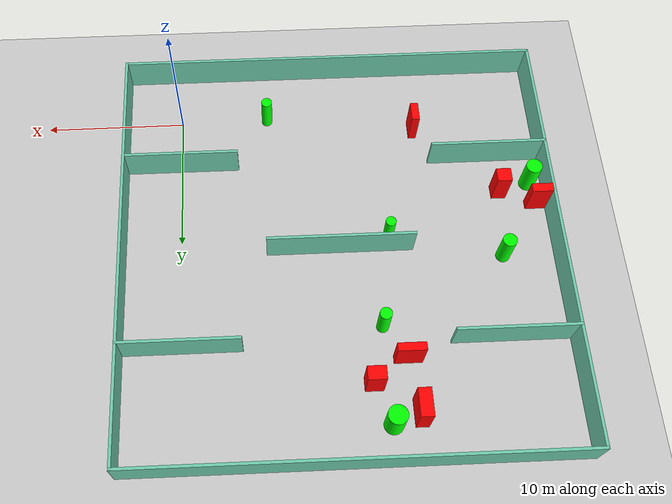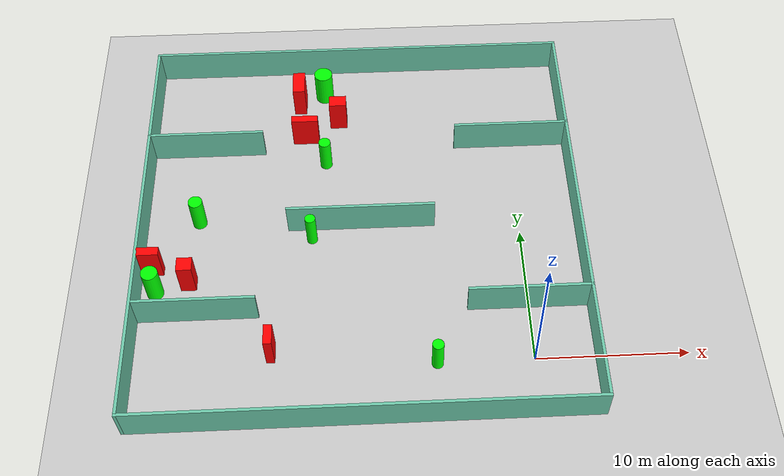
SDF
<sdf version="1.7">
 <world name="default">
  <light name="sun" type="directional">
   <pose>0 0 10 0 -0 0</pose>
   <diffuse>0.8 0.8 0.8 1</diffuse>
   <specular>0.2 0.2 0.2 1</specular>
   <attenuation>
    <range>1000</range>
    <constant>0.9</constant>
    <linear>0.01</linear>
    <quadratic>0.001</quadratic>
   </attenuation>
   <direction>-0.5 0.1 -0.9</direction>
   <spot><inner_angle>0</inner_angle><outer_angle>0</outer_angle><falloff>0</falloff></spot>
  </light>
  <model name="ground_plane">
   <static>1</static>
   <link name="link">
    <collision name="collision">
     <geometry><plane><normal>0 0 1</normal><size>100 100</size></plane></geometry>
     <surface>
      <contact><collide_bitmask>65535</collide_bitmask></contact>
      <friction><ode><mu>100</mu><mu2>50</mu2></ode></friction>
     </surface>
    </collision>
    <visual name="visual">
     <cast_shadows>0</cast_shadows>
     <geometry><plane><normal>0 0 1</normal><size>100 100</size></plane></geometry>
     <material>
      <script><uri>file://media/materials/scripts/gazebo.material</uri><name>Gazebo/Grey</name></script>
     </material>
    </visual>
   </link>
  </model>
  <gravity>0 0 -9.8</gravity>
  <magnetic_field>6e-06 2.3e-05 -4.2e-05</magnetic_field>
  <atmosphere type="adiabatic"/>
  <physics type="ode">
   <max_step_size>0.001</max_step_size>
   <real_time_factor>1</real_time_factor>
   <real_time_update_rate>1000</real_time_update_rate>
  </physics>
  <scene><ambient>0.4 0.4 0.4 1</ambient><background>0.7 0.7 0.7 1</background><shadows>1</shadows></scene>
  <spherical_coordinates>
   <surface_model>EARTH_WGS84</surface_model>
   <latitude_deg>0</latitude_deg>
   <longitude_deg>0</longitude_deg>
   <elevation>0</elevation>
   <heading_deg>0</heading_deg>
  </spherical_coordinates>
  <model name="my_base_walls">
   <link name="Wall_10">
    <collision name="Wall_10_Collision">
     <geometry><box><size>8.2 0.2 2.5</size></box></geometry>
     <pose>0 0 1.25 0 -0 0</pose>
    </collision>
    <visual name="Wall_10_Visual">
     <pose>0 0 1.25 0 -0 0</pose>
     <geometry><box><size>8.2 0.2 2.5</size></box></geometry>
     <material>
      <script><uri>file://media/materials/scripts/gazebo.material</uri><name>Gazebo/Grey</name></script>
      <ambient>0.435294 0.796078 0.67451 1</ambient>
     </material>
     <meta><layer>0</layer></meta>
    </visual>
    <pose>-11 -7 0 0 -0 0</pose>
   </link>
   <link name="Wall_12">
    <collision name="Wall_12_Collision">
     <geometry><box><size>8.2 0.2 2.5</size></box></geometry>
     <pose>0 0 1.25 0 -0 0</pose>
    </collision>
    <visual name="Wall_12_Visual">
     <pose>0 0 1.25 0 -0 0</pose>
     <geometry><box><size>8.2 0.2 2.5</size></box></geometry>
     <material>
      <script><uri>file://media/materials/scripts/gazebo.material</uri><name>Gazebo/Grey</name></script>
      <ambient>0.435294 0.796078 0.67451 1</ambient>
     </material>
     <meta><layer>0</layer></meta>
    </visual>
    <pose>-11 7 0 0 -0 0</pose>
   </link>
   <link name="Wall_14">
    <collision name="Wall_14_Collision">
     <geometry><box><size>8.2 0.2 2.5</size></box></geometry>
     <pose>0 0 1.25 0 -0 0</pose>
    </collision>
    <visual name="Wall_14_Visual">
     <pose>0 0 1.25 0 -0 0</pose>
     <geometry><box><size>8.2 0.2 2.5</size></box></geometry>
     <material>
      <script><uri>file://media/materials/scripts/gazebo.material</uri><name>Gazebo/Grey</name></script>
      <ambient>0.435294 0.796078 0.67451 1</ambient>
     </material>
     <meta><layer>0</layer></meta>
    </visual>
    <pose>11 7 0 0 -0 3.14159</pose>
   </link>
   <link name="Wall_16">
    <collision name="Wall_16_Collision">
     <geometry><box><size>10.2 0.2 2.5</size></box></geometry>
     <pose>0 0 1.25 0 -0 0</pose>
    </collision>
    <visual name="Wall_16_Visual">
     <pose>0 0 1.25 0 -0 0</pose>
     <geometry><box><size>10.2 0.2 2.5</size></box></geometry>
     <material>
      <script><uri>file://media/materials/scripts/gazebo.material</uri><name>Gazebo/Grey</name></script>
      <ambient>0.435294 0.796078 0.67451 1</ambient>
     </material>
     <meta><layer>0</layer></meta>
    </visual>
    <pose>0 0 0 0 -0 3.14159</pose>
   </link>
   <link name="Wall_2">
    <collision name="Wall_2_Collision">
     <geometry><box><size>30.2 0.2 2.5</size></box></geometry>
     <pose>0 0 1.25 0 -0 0</pose>
    </collision>
    <visual name="Wall_2_Visual">
     <pose>0 0 1.25 0 -0 0</pose>
     <geometry><box><size>30.2 0.2 2.5</size></box></geometry>
     <material>
      <script><uri>file://media/materials/scripts/gazebo.material</uri><name>Gazebo/Grey</name></script>
      <ambient>0.435294 0.796078 0.67451 1</ambient>
     </material>
     <meta><layer>0</layer></meta>
    </visual>
    <pose>0 -15 0 0 -0 3.14159</pose>
   </link>
   <link name="Wall_3">
    <collision name="Wall_3_Collision">
     <geometry><box><size>30.2 0.2 2.5</size></box></geometry>
     <pose>0 0 1.25 0 -0 0</pose>
    </collision>
    <visual name="Wall_3_Visual">
     <pose>0 0 1.25 0 -0 0</pose>
     <geometry><box><size>30.2 0.2 2.5</size></box></geometry>
     <material>
      <script><uri>file://media/materials/scripts/gazebo.material</uri><name>Gazebo/Grey</name></script>
      <ambient>0.435294 0.796078 0.67451 1</ambient>
     </material>
     <meta><layer>0</layer></meta>
    </visual>
    <pose>-15 0 0 0 -0 1.5708</pose>
   </link>
   <link name="Wall_4">
    <collision name="Wall_4_Collision">
     <geometry><box><size>30.2 0.2 2.5</size></box></geometry>
     <pose>0 0 1.25 0 -0 0</pose>
    </collision>
    <visual name="Wall_4_Visual">
     <pose>0 0 1.25 0 -0 0</pose>
     <geometry><box><size>30.2 0.2 2.5</size></box></geometry>
     <material>
      <script><uri>file://media/materials/scripts/gazebo.material</uri><name>Gazebo/Grey</name></script>
      <ambient>0.435294 0.796078 0.67451 1</ambient>
     </material>
     <meta><layer>0</layer></meta>
    </visual>
    <pose>0 15 0 0 -0 0</pose>
   </link>
   <link name="Wall_6">
    <collision name="Wall_6_Collision">
     <geometry><box><size>30.2 0.2 2.5</size></box></geometry>
     <pose>0 0 1.25 0 -0 0</pose>
    </collision>
    <visual name="Wall_6_Visual">
     <pose>0 0 1.25 0 -0 0</pose>
     <geometry><box><size>30.2 0.2 2.5</size></box></geometry>
     <material>
      <script><uri>file://media/materials/scripts/gazebo.material</uri><name>Gazebo/Grey</name></script>
      <ambient>0.435294 0.796078 0.67451 1</ambient>
     </material>
     <meta><layer>0</layer></meta>
    </visual>
    <pose>15 0 0 0 -0 1.5708</pose>
   </link>
   <link name="Wall_8">
    <collision name="Wall_8_Collision">
     <geometry><box><size>8.2 0.2 2.5</size></box></geometry>
     <pose>0 0 1.25 0 -0 0</pose>
    </collision>
    <visual name="Wall_8_Visual">
     <pose>0 0 1.25 0 -0 0</pose>
     <geometry><box><size>8.2 0.2 2.5</size></box></geometry>
     <material>
      <script><uri>file://media/materials/scripts/gazebo.material</uri><name>Gazebo/Grey</name></script>
      <ambient>0.435294 0.796078 0.67451 1</ambient>
     </material>
     <meta><layer>0</layer></meta>
    </visual>
    <pose>11 -7 0 0 -0 3.14159</pose>
   </link>
   <static>1</static>
   <pose>-11 11 0 0 -0 0</pose>
  </model>
  <model name="cylinder1">
   <static>1</static>
   <link name="link">
    <inertial>
     <mass>1</mass>
     <inertia><ixx>0.5</ixx><ixy>0</ixy><ixz>0</ixz><iyy>0.5</iyy><iyz>0</iyz><izz>1</izz></inertia>
    </inertial>
    <collision name="collision">
     <geometry><cylinder><radius>0.5631468022685564</radius><length>2.5</length></cylinder></geometry>
    </collision>
    <visual name="visual">
     <geometry><cylinder><radius>0.5631468022685564</radius><length>2.5</length></cylinder></geometry>
     <material>
      <ambient>0 1 0 1</ambient>
      <diffuse>0 1 0 1</diffuse>
      <specular>0.1 0.1 0.1 1</specular>
      <emissive>0 0 0 0</emissive>
     </material>
    </visual>
   </link>
   <pose>-24.905354856631632 6.136268592587326 1.25 0 0 0</pose>
  </model>
  <model name="cylinder2">
   <static>1</static>
   <link name="link">
    <inertial>
     <mass>1</mass>
     <inertia><ixx>0.5</ixx><ixy>0</ixy><ixz>0</ixz><iyy>0.5</iyy><iyz>0</iyz><izz>1</izz></inertia>
    </inertial>
    <collision name="collision">
     <geometry><cylinder><radius>0.42062300897016736</radius><length>2.5</length></cylinder></geometry>
    </collision>
    <visual name="visual">
     <geometry><cylinder><radius>0.42062300897016736</radius><length>2.5</length></cylinder></geometry>
     <material>
      <ambient>0 1 0 1</ambient>
      <diffuse>0 1 0 1</diffuse>
      <specular>0.1 0.1 0.1 1</specular>
      <emissive>0 0 0 0</emissive>
     </material>
    </visual>
   </link>
   <pose>-13.465199285820427 16.75760298125292 1.25 0 0 0</pose>
  </model>
  <model name="cylinder3">
   <static>1</static>
   <link name="link">
    <inertial>
     <mass>1</mass>
     <inertia><ixx>0.5</ixx><ixy>0</ixy><ixz>0</ixz><iyy>0.5</iyy><iyz>0</iyz><izz>1</izz></inertia>
    </inertial>
    <collision name="collision">
     <geometry><cylinder><radius>0.3611048835072577</radius><length>2.5</length></cylinder></geometry>
    </collision>
    <visual name="visual">
     <geometry><cylinder><radius>0.3611048835072577</radius><length>2.5</length></cylinder></geometry>
     <material>
      <ambient>0 1 0 1</ambient>
      <diffuse>0 1 0 1</diffuse>
      <specular>0.1 0.1 0.1 1</specular>
      <emissive>0 0 0 0</emissive>
     </material>
    </visual>
   </link>
   <pose>-14.432256448805003 10.073731796700205 1.25 0 0 0</pose>
  </model>
  <model name="cylinder4">
   <static>1</static>
   <link name="link">
    <inertial>
     <mass>1</mass>
     <inertia><ixx>0.5</ixx><ixy>0</ixy><ixz>0</ixz><iyy>0.5</iyy><iyz>0</iyz><izz>1</izz></inertia>
    </inertial>
    <collision name="collision">
     <geometry><cylinder><radius>0.37841403145516095</radius><length>2.5</length></cylinder></geometry>
    </collision>
    <visual name="visual">
     <geometry><cylinder><radius>0.37841403145516095</radius><length>2.5</length></cylinder></geometry>
     <material>
      <ambient>0 1 0 1</ambient>
      <diffuse>0 1 0 1</diffuse>
      <specular>0.1 0.1 0.1 1</specular>
      <emissive>0 0 0 0</emissive>
     </material>
    </visual>
   </link>
   <pose>-6.297838208250949 -0.057086357643867824 1.25 0 0 0</pose>
  </model>
  <model name="cylinder5">
   <static>1</static>
   <link name="link">
    <inertial>
     <mass>1</mass>
     <inertia><ixx>0.5</ixx><ixy>0</ixy><ixz>0</ixz><iyy>0.5</iyy><iyz>0</iyz><izz>1</izz></inertia>
    </inertial>
    <collision name="collision">
     <geometry><cylinder><radius>0.48667284793946314</radius><length>2.5</length></cylinder></geometry>
    </collision>
    <visual name="visual">
     <geometry><cylinder><radius>0.48667284793946314</radius><length>2.5</length></cylinder></geometry>
     <material>
      <ambient>0 1 0 1</ambient>
      <diffuse>0 1 0 1</diffuse>
      <specular>0.1 0.1 0.1 1</specular>
      <emissive>0 0 0 0</emissive>
     </material>
    </visual>
   </link>
   <pose>-22.30623315660028 11.837585613168677 1.25 0 0 0</pose>
  </model>
  <model name="cylinder6">
   <static>1</static>
   <link name="link">
    <inertial>
     <mass>1</mass>
     <inertia><ixx>0.5</ixx><ixy>0</ixy><ixz>0</ixz><iyy>0.5</iyy><iyz>0</iyz><izz>1</izz></inertia>
    </inertial>
    <collision name="collision">
     <geometry><cylinder><radius>0.6537072836359568</radius><length>2.5</length></cylinder></geometry>
    </collision>
    <visual name="visual">
     <geometry><cylinder><radius>0.6537072836359568</radius><length>2.5</length></cylinder></geometry>
     <material>
      <ambient>0 1 0 1</ambient>
      <diffuse>0 1 0 1</diffuse>
      <specular>0.1 0.1 0.1 1</specular>
      <emissive>0 0 0 0</emissive>
     </material>
    </visual>
   </link>
   <pose>-13.579089661282822 23.432829387583265 1.25 0 0 0</pose>
  </model>
  <model name="box1">
   <static>1</static>
   <link name="link">
    <inertial>
     <mass>1</mass>
     <inertia><ixx>0.083</ixx><ixy>0</ixy><ixz>0</ixz><iyy>0.083</iyy><iyz>0</iyz><izz>0.083</izz></inertia>
    </inertial>
    <collision name="collision">
     <geometry><box><size>1.0226548619266032 0.9932994720250908 2.5</size></box></geometry>
    </collision>
    <visual name="visual">
     <geometry><box><size>1.0226548619266032 0.9932994720250908 2.5</size></box></geometry>
     <material>
      <ambient>1 0 0 1</ambient>
      <diffuse>1 0 0 1</diffuse>
      <specular>0.1 0.1 0.1 1</specular>
      <emissive>0 0 0 0</emissive>
     </material>
    </visual>
    <sensor name="my_contact" type="contact">
     <contact><collision>box_collision</collision><topic>__default_topic__</topic></contact>
    </sensor>
   </link>
   <pose>-22.685020230255528 6.747255233476615 1.25 0 0 0</pose>
  </model>
  <model name="box2">
   <static>1</static>
   <link name="link">
    <inertial>
     <mass>1</mass>
     <inertia><ixx>0.083</ixx><ixy>0</ixy><ixz>0</ixz><iyy>0.083</iyy><iyz>0</iyz><izz>0.083</izz></inertia>
    </inertial>
    <collision name="collision">
     <geometry><box><size>0.8785571081989201 1.8796722268557304 2.5</size></box></geometry>
    </collision>
    <visual name="visual">
     <geometry><box><size>0.8785571081989201 1.8796722268557304 2.5</size></box></geometry>
     <material>
      <ambient>1 0 0 1</ambient>
      <diffuse>1 0 0 1</diffuse>
      <specular>0.1 0.1 0.1 1</specular>
      <emissive>0 0 0 0</emissive>
     </material>
    </visual>
    <sensor name="my_contact" type="contact">
     <contact><collision>box_collision</collision><topic>__default_topic__</topic></contact>
    </sensor>
   </link>
   <pose>-15.385064835030676 22.71224445355138 1.25 0 0 0</pose>
  </model>
  <model name="box3">
   <static>1</static>
   <link name="link">
    <inertial>
     <mass>1</mass>
     <inertia><ixx>0.083</ixx><ixy>0</ixy><ixz>0</ixz><iyy>0.083</iyy><iyz>0</iyz><izz>0.083</izz></inertia>
    </inertial>
    <collision name="collision">
     <geometry><box><size>0.5504041554389556 1.3943089621876965 2.5</size></box></geometry>
    </collision>
    <visual name="visual">
     <geometry><box><size>0.5504041554389556 1.3943089621876965 2.5</size></box></geometry>
     <material>
      <ambient>1 0 0 1</ambient>
      <diffuse>1 0 0 1</diffuse>
      <specular>0.1 0.1 0.1 1</specular>
      <emissive>0 0 0 0</emissive>
     </material>
    </visual>
    <sensor name="my_contact" type="contact">
     <contact><collision>box_collision</collision><topic>__default_topic__</topic></contact>
    </sensor>
   </link>
   <pose>-17.02036870161701 1.171321308232332 1.25 0 0 0</pose>
  </model>
  <model name="box4">
   <static>1</static>
   <link name="link">
    <inertial>
     <mass>1</mass>
     <inertia><ixx>0.083</ixx><ixy>0</ixy><ixz>0</ixz><iyy>0.083</iyy><iyz>0</iyz><izz>0.083</izz></inertia>
    </inertial>
    <collision name="collision">
     <geometry><box><size>1.24191489109085 0.9249518255662738 2.5</size></box></geometry>
    </collision>
    <visual name="visual">
     <geometry><box><size>1.24191489109085 0.9249518255662738 2.5</size></box></geometry>
     <material>
      <ambient>1 0 0 1</ambient>
      <diffuse>1 0 0 1</diffuse>
      <specular>0.1 0.1 0.1 1</specular>
      <emissive>0 0 0 0</emissive>
     </material>
    </visual>
    <sensor name="my_contact" type="contact">
     <contact><collision>box_collision</collision><topic>__default_topic__</topic></contact>
    </sensor>
   </link>
   <pose>-12.536199645285528 20.705411140222033 1.25 0 0 0</pose>
  </model>
  <model name="box5">
   <static>1</static>
   <link name="link">
    <inertial>
     <mass>1</mass>
     <inertia><ixx>0.083</ixx><ixy>0</ixy><ixz>0</ixz><iyy>0.083</iyy><iyz>0</iyz><izz>0.083</izz></inertia>
    </inertial>
    <collision name="collision">
     <geometry><box><size>1.8932307817611314 0.5548572046971322 2.5</size></box></geometry>
    </collision>
    <visual name="visual">
     <geometry><box><size>1.8932307817611314 0.5548572046971322 2.5</size></box></geometry>
     <material>
      <ambient>1 0 0 1</ambient>
      <diffuse>1 0 0 1</diffuse>
      <specular>0.1 0.1 0.1 1</specular>
      <emissive>0 0 0 0</emissive>
     </material>
    </visual>
    <sensor name="my_contact" type="contact">
     <contact><collision>box_collision</collision><topic>__default_topic__</topic></contact>
    </sensor>
   </link>
   <pose>-14.92391156094321 19.08209269163137 1.25 0 0 0</pose>
  </model>
  <model name="box6">
   <static>1</static>
   <link name="link">
    <inertial>
     <mass>1</mass>
     <inertia><ixx>0.083</ixx><ixy>0</ixy><ixz>0</ixz><iyy>0.083</iyy><iyz>0</iyz><izz>0.083</izz></inertia>
    </inertial>
    <collision name="collision">
     <geometry><box><size>1.4714197893494658 0.6308706376985957 2.5</size></box></geometry>
    </collision>
    <visual name="visual">
     <geometry><box><size>1.4714197893494658 0.6308706376985957 2.5</size></box></geometry>
     <material>
      <ambient>1 0 0 1</ambient>
      <diffuse>1 0 0 1</diffuse>
      <specular>0.1 0.1 0.1 1</specular>
      <emissive>0 0 0 0</emissive>
     </material>
    </visual>
    <sensor name="my_contact" type="contact">
     <contact><collision>box_collision</collision><topic>__default_topic__</topic></contact>
    </sensor>
   </link>
   <pose>-25.20398088964322 7.879311828695501 1.25 0 0 0</pose>
  </model>
 </world>
</sdf>
